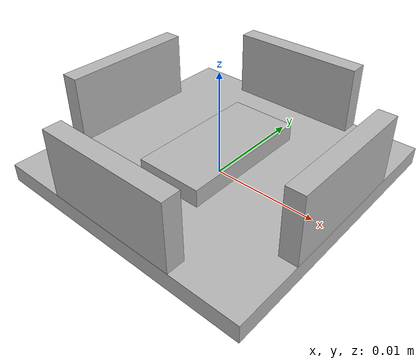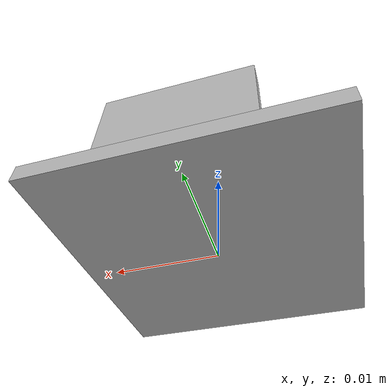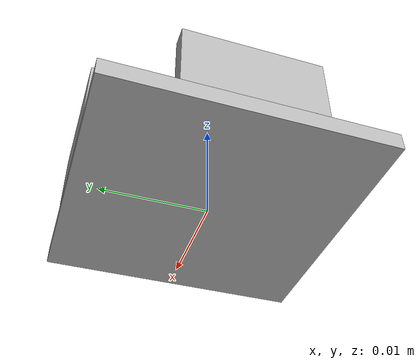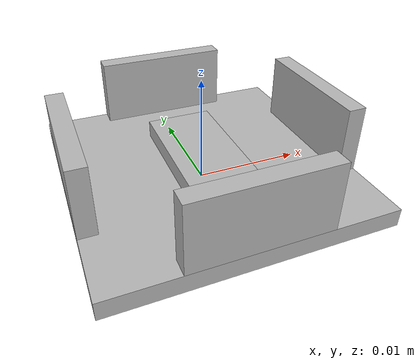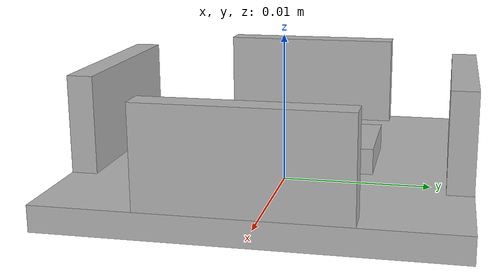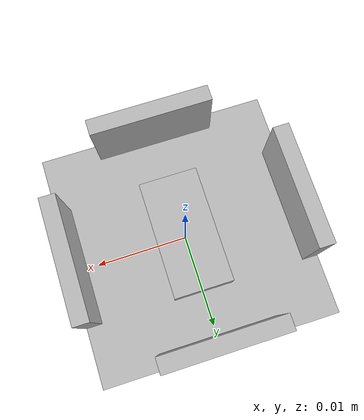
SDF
<?xml version="1.0"?>
<sdf version="1.5">
  <!-- This file is based off of the Gazebo lidar sensor tutorial -->
  <!-- http://gazebosim.org/tutorials?cat=guided_i&tut=guided_i1 -->

  <model name="multiranger_deck">
    <link name="base">
      <!-- offset the base by half the thickness of the PCB -->
      <pose> 0 0 0.000835 0 0 0</pose>
      <collision name="base_collision">
        <geometry>
          <box>
            <size>.0254 .0254 .00167 </size>
          </box>
        </geometry>
      </collision>

      <visual name="base_visual">
        <geometry>
          <box>
            <size>.0254 .0254 .00167 </size>
          </box>
        </geometry>
      </visual>
    </link>

    <link name='front_sensor'>
      <pose>.011865 0 .004845 0 1.5707 0 </pose>
      <collision name="front_sensor_collision">
        <geometry>
          <box>
            <size>.00635 .0127 .00167</size>
          </box>
        </geometry>
      </collision>

      <visual name="front_sensor_visual">
        <geometry>
          <box>
            <size>.00635 .0127 .00167</size>
          </box>
        </geometry>
      </visual>

      <sensor type="ray" name="front_sensor">
        <pose>.000835 0 0 0 -1.5707 0</pose>
        <!-- Enable visualization to see the rays in the GUI-->
        <visualize>true</visualize>

        <!-- Set the update rate of the sensor -->
        <update_rate>10</update_rate>
        <ray>
          <scan>
            <!-- Only using horizontal beams for now -->
            <horizontal>
              <samples>32</samples>
              <!-- Resolution is multiplied by samples to determine the number
                  of simulated beams vs interpolated beams
               -->
              <resolution>1</resolution>
              <min_angle>-.20943</min_angle>
              <max_angle>.20943</max_angle>
            </horizontal>
            <vertical>
              <samples>32</samples>
              <resolution>1</resolution>
              <min_angle>-.20943</min_angle>
              <max_angle>.20943</max_angle>
            </vertical>
          </scan>
          <range>
            <min>.02</min>
            <max>4.</max>
          </range>
        </ray>
      </sensor>
    </link>

    <link name='left_sensor'>
      <pose>0 .011854 .004845 0 1.5707 1.5707 </pose>
      <collision name="left_sensor_collision">
        <geometry>
          <box>
            <size>.00635 .0127 .00167</size>
          </box>
        </geometry>
      </collision>

      <visual name="left_sensor_visual">
        <geometry>
          <box>
            <size>.00635 .0127 .00167</size>
          </box>
        </geometry>
      </visual>

      <sensor type="ray" name="left_sensor">
        <pose>.000835 0 0 0 -1.5707 0</pose>
        <!-- Enable visualization to see the rays in the GUI-->
        <visualize>true</visualize>

        <!-- Set the update rate of the sensor -->
        <update_rate>10</update_rate>
        <ray>
          <scan>
            <!-- Only using horizontal beams for now -->
            <horizontal>
              <samples>32</samples>
              <!-- Resolution is multiplied by samples to determine the number
                  of simulated beams vs interpolated beams
               -->
              <resolution>1</resolution>
              <min_angle>-.20943</min_angle>
              <max_angle>.20943</max_angle>
            </horizontal>
            <vertical>
              <samples>32</samples>
              <resolution>1</resolution>
              <min_angle>-.20943</min_angle>
              <max_angle>.20943</max_angle>
            </vertical>
          </scan>
          <range>
            <min>.02</min>
            <max>4.</max>
          </range>
        </ray>
      </sensor>
    </link>

    <link name='back_sensor'>
      <pose>-.011865 0 .004845 0 -1.5707 0 </pose>
      <collision name="back_sensor_collision">
        <geometry>
          <box>
            <size>.00635 .0127 .00167</size>
          </box>
        </geometry>
      </collision>

      <visual name="back_sensor_visual">
        <geometry>
          <box>
            <size>.00635 .0127 .00167</size>
          </box>
        </geometry>
      </visual>

      <sensor type="ray" name="back_sensor">
        <pose>.000835 0 0 0 -1.5707 0</pose>
        <!-- Enable visualization to see the rays in the GUI-->
        <visualize>true</visualize>

        <!-- Set the update rate of the sensor -->
        <update_rate>10</update_rate>
        <ray>
          <scan>
            <!-- Only using horizontal beams for now -->
            <horizontal>
              <samples>32</samples>
              <!-- Resolution is multiplied by samples to determine the number
                  of simulated beams vs interpolated beams
               -->
              <resolution>1</resolution>
              <min_angle>-.20943</min_angle>
              <max_angle>.20943</max_angle>
            </horizontal>
            <vertical>
              <samples>32</samples>
              <resolution>1</resolution>
              <min_angle>-.20943</min_angle>
              <max_angle>.20943</max_angle>
            </vertical>
          </scan>
          <range>
            <min>.02</min>
            <max>4.</max>
          </range>
        </ray>
      </sensor>
    </link>

      <link name='right_sensor'>
        <pose>0 -.011865 .004845 0 1.5707 -1.5707 </pose>
        <collision name="right_sensor_collision">
          <geometry>
            <box>
              <size>.00635 .0127 .00167</size>
            </box>
          </geometry>
        </collision>

        <visual name="right_sensor_visual">
          <geometry>
            <box>
              <size>.00635 .0127 .00167</size>
            </box>
          </geometry>
        </visual>

        <sensor type="ray" name="right_sensor">
          <pose>.000835 0 0 0 -1.5707 0</pose>
          <!-- Enable visualization to see the rays in the GUI-->
          <visualize>true</visualize>

          <!-- Set the update rate of the sensor -->
          <update_rate>10</update_rate>
          <ray>
            <scan>
              <!-- Only using horizontal beams for now -->
              <horizontal>
                <samples>32</samples>
                <!-- Resolution is multiplied by samples to determine the number
                    of simulated beams vs interpolated beams
                 -->
                <resolution>1</resolution>
                <min_angle>-.20943</min_angle>
                <max_angle>.20943</max_angle>
              </horizontal>
              <vertical>
                <samples>32</samples>
                <resolution>1</resolution>
                <min_angle>-.20943</min_angle>
                <max_angle>.20943</max_angle>
              </vertical>
            </scan>
            <range>
              <min>.02</min>
              <max>4.</max>
            </range>
          </ray>
        </sensor>
      </link>

      <link name='top_sensor'>
        <pose>0 0 .002505 0 0 0 </pose>
        <collision name="top_sensor_collision">
          <geometry>
            <box>
              <size>.00635 .0127 .00167</size>
            </box>
          </geometry>
        </collision>

        <visual name="top_sensor_visual">
          <geometry>
            <box>
              <size>.00635 .0127 .00167</size>
            </box>
          </geometry>
        </visual>

        <sensor type="ray" name="top_sensor">
          <pose>.000835 0 0 0 -1.5707 0</pose>
          <!-- Enable visualization to see the rays in the GUI-->
          <visualize>true</visualize>

          <!-- Set the update rate of the sensor -->
          <update_rate>10</update_rate>
          <ray>
            <scan>
              <!-- Only using horizontal beams for now -->
              <horizontal>
                <samples>32</samples>
                <!-- Resolution is multiplied by samples to determine the number
                    of simulated beams vs interpolated beams
                 -->
                <resolution>1</resolution>
                <min_angle>-.20943</min_angle>
                <max_angle>.20943</max_angle>
              </horizontal>
              <vertical>
                <samples>32</samples>
                <resolution>1</resolution>
                <min_angle>-.20943</min_angle>
                <max_angle>.20943</max_angle>
              </vertical>
            </scan>
            <range>
              <min>.02</min>
              <max>4.</max>
            </range>
          </ray>
        </sensor>
      </link>

      <plugin name="multiranger_deck_gazebo_ros" filename="libmultiranger_deck_gazebo_ros.so"/>
  </model>
</sdf>
